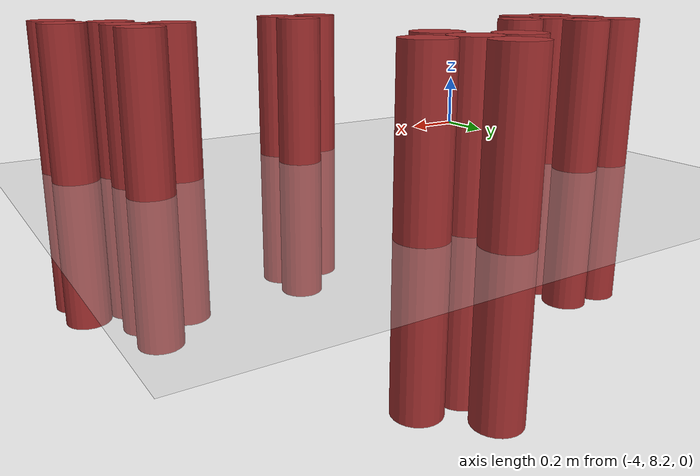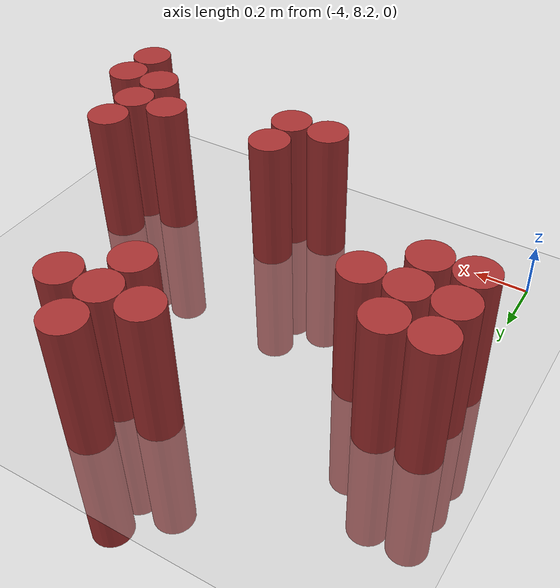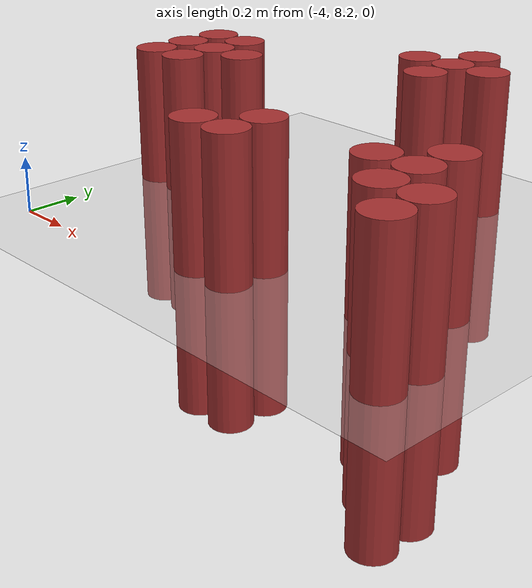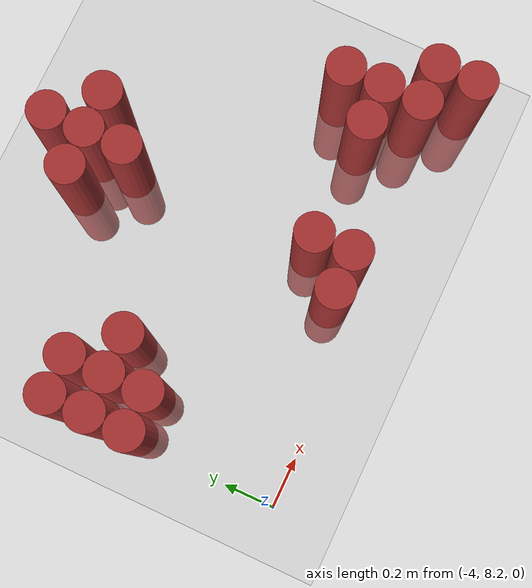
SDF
<sdf version="1.6">
 <world name="default">
  <model name="ground_plane">
   <static>1</static>
   <link name="link">
    <collision name="collision">
     <geometry><plane><normal>0 0 1</normal><size>100 100</size></plane></geometry>
     <surface><friction><ode><mu>100</mu><mu2>50</mu2></ode></friction></surface>
    </collision>
    <visual name="visual">
     <cast_shadows>0</cast_shadows>
     <geometry><plane><normal>0 0 1</normal><size>100 100</size></plane></geometry>
     <material>
      <script><uri>file://media/materials/scripts/gazebo.material</uri><name>Gazebo/Grey</name></script>
     </material>
    </visual>
   </link>
  </model>
  <model name="unit_cylinder_156">
   <static>1</static>
   <pose>-3.975000 8.775000 0.000000 0.000000 0.000000 0.000000</pose>
   <link name="link">
    <inertial>
     <mass>1</mass>
     <inertia><ixx>0.145833</ixx><ixy>0</ixy><ixz>0</ixz><iyy>0.145833</iyy><iyz>0</iyz><izz>0.125</izz></inertia>
    </inertial>
    <collision name="collision">
     <geometry><cylinder><radius>0.075000</radius><length>1</length></cylinder></geometry>
    </collision>
    <visual name="visual">
     <geometry><cylinder><radius>0.075000</radius><length>1</length></cylinder></geometry>
     <material>
      <ambient>0.648000 0.192000 0.192000 1</ambient>
      <diffuse>0.648000 0.192000 0.192000 1</diffuse>
     </material>
     <material>
      <script><name>Gazebo/Grey</name><uri>file://media/materials/scripts/gazebo.material</uri></script>
     </material>
    </visual>
    <sensor name="sensor_contact" type="contact"><contact><collision>collision</collision></contact></sensor>
   </link>
   <plugin filename="gz-sim-touchplugin-system" name="gz::sim::systems::TouchPlugin">
    <target>robot</target>
    <namespace>robot</namespace>
    <time>0.001</time>
    <enabled>true</enabled>
   </plugin>
  </model>
  <model name="unit_cylinder_157">
   <static>1</static>
   <pose>-3.975000 8.925000 0.000000 0.000000 0.000000 0.000000</pose>
   <link name="link">
    <inertial>
     <mass>1</mass>
     <inertia><ixx>0.145833</ixx><ixy>0</ixy><ixz>0</ixz><iyy>0.145833</iyy><iyz>0</iyz><izz>0.125</izz></inertia>
    </inertial>
    <collision name="collision">
     <geometry><cylinder><radius>0.075000</radius><length>1</length></cylinder></geometry>
    </collision>
    <visual name="visual">
     <geometry><cylinder><radius>0.075000</radius><length>1</length></cylinder></geometry>
     <material>
      <ambient>0.648000 0.192000 0.192000 1</ambient>
      <diffuse>0.648000 0.192000 0.192000 1</diffuse>
     </material>
     <material>
      <script><name>Gazebo/Grey</name><uri>file://media/materials/scripts/gazebo.material</uri></script>
     </material>
    </visual>
    <sensor name="sensor_contact" type="contact"><contact><collision>collision</collision></contact></sensor>
   </link>
   <plugin filename="gz-sim-touchplugin-system" name="gz::sim::systems::TouchPlugin">
    <target>robot</target>
    <namespace>robot</namespace>
    <time>0.001</time>
    <enabled>true</enabled>
   </plugin>
  </model>
  <model name="unit_cylinder_158">
   <static>1</static>
   <pose>-3.975000 9.075000 0.000000 0.000000 0.000000 0.000000</pose>
   <link name="link">
    <inertial>
     <mass>1</mass>
     <inertia><ixx>0.145833</ixx><ixy>0</ixy><ixz>0</ixz><iyy>0.145833</iyy><iyz>0</iyz><izz>0.125</izz></inertia>
    </inertial>
    <collision name="collision">
     <geometry><cylinder><radius>0.075000</radius><length>1</length></cylinder></geometry>
    </collision>
    <visual name="visual">
     <geometry><cylinder><radius>0.075000</radius><length>1</length></cylinder></geometry>
     <material>
      <ambient>0.648000 0.192000 0.192000 1</ambient>
      <diffuse>0.648000 0.192000 0.192000 1</diffuse>
     </material>
     <material>
      <script><name>Gazebo/Grey</name><uri>file://media/materials/scripts/gazebo.material</uri></script>
     </material>
    </visual>
    <sensor name="sensor_contact" type="contact"><contact><collision>collision</collision></contact></sensor>
   </link>
   <plugin filename="gz-sim-touchplugin-system" name="gz::sim::systems::TouchPlugin">
    <target>robot</target>
    <namespace>robot</namespace>
    <time>0.001</time>
    <enabled>true</enabled>
   </plugin>
  </model>
  <model name="unit_cylinder_161">
   <static>1</static>
   <pose>-3.825000 8.775000 0.000000 0.000000 0.000000 0.000000</pose>
   <link name="link">
    <inertial>
     <mass>1</mass>
     <inertia><ixx>0.145833</ixx><ixy>0</ixy><ixz>0</ixz><iyy>0.145833</iyy><iyz>0</iyz><izz>0.125</izz></inertia>
    </inertial>
    <collision name="collision">
     <geometry><cylinder><radius>0.075000</radius><length>1</length></cylinder></geometry>
    </collision>
    <visual name="visual">
     <geometry><cylinder><radius>0.075000</radius><length>1</length></cylinder></geometry>
     <material>
      <ambient>0.648000 0.192000 0.192000 1</ambient>
      <diffuse>0.648000 0.192000 0.192000 1</diffuse>
     </material>
     <material>
      <script><name>Gazebo/Grey</name><uri>file://media/materials/scripts/gazebo.material</uri></script>
     </material>
    </visual>
    <sensor name="sensor_contact" type="contact"><contact><collision>collision</collision></contact></sensor>
   </link>
   <plugin filename="gz-sim-touchplugin-system" name="gz::sim::systems::TouchPlugin">
    <target>robot</target>
    <namespace>robot</namespace>
    <time>0.001</time>
    <enabled>true</enabled>
   </plugin>
  </model>
  <model name="unit_cylinder_162">
   <static>1</static>
   <pose>-3.825000 8.925000 0.000000 0.000000 0.000000 0.000000</pose>
   <link name="link">
    <inertial>
     <mass>1</mass>
     <inertia><ixx>0.145833</ixx><ixy>0</ixy><ixz>0</ixz><iyy>0.145833</iyy><iyz>0</iyz><izz>0.125</izz></inertia>
    </inertial>
    <collision name="collision">
     <geometry><cylinder><radius>0.075000</radius><length>1</length></cylinder></geometry>
    </collision>
    <visual name="visual">
     <geometry><cylinder><radius>0.075000</radius><length>1</length></cylinder></geometry>
     <material>
      <ambient>0.648000 0.192000 0.192000 1</ambient>
      <diffuse>0.648000 0.192000 0.192000 1</diffuse>
     </material>
     <material>
      <script><name>Gazebo/Grey</name><uri>file://media/materials/scripts/gazebo.material</uri></script>
     </material>
    </visual>
    <sensor name="sensor_contact" type="contact"><contact><collision>collision</collision></contact></sensor>
   </link>
   <plugin filename="gz-sim-touchplugin-system" name="gz::sim::systems::TouchPlugin">
    <target>robot</target>
    <namespace>robot</namespace>
    <time>0.001</time>
    <enabled>true</enabled>
   </plugin>
  </model>
  <model name="unit_cylinder_163">
   <static>1</static>
   <pose>-3.825000 9.075000 0.000000 0.000000 0.000000 0.000000</pose>
   <link name="link">
    <inertial>
     <mass>1</mass>
     <inertia><ixx>0.145833</ixx><ixy>0</ixy><ixz>0</ixz><iyy>0.145833</iyy><iyz>0</iyz><izz>0.125</izz></inertia>
    </inertial>
    <collision name="collision">
     <geometry><cylinder><radius>0.075000</radius><length>1</length></cylinder></geometry>
    </collision>
    <visual name="visual">
     <geometry><cylinder><radius>0.075000</radius><length>1</length></cylinder></geometry>
     <material>
      <ambient>0.648000 0.192000 0.192000 1</ambient>
      <diffuse>0.648000 0.192000 0.192000 1</diffuse>
     </material>
     <material>
      <script><name>Gazebo/Grey</name><uri>file://media/materials/scripts/gazebo.material</uri></script>
     </material>
    </visual>
    <sensor name="sensor_contact" type="contact"><contact><collision>collision</collision></contact></sensor>
   </link>
   <plugin filename="gz-sim-touchplugin-system" name="gz::sim::systems::TouchPlugin">
    <target>robot</target>
    <namespace>robot</namespace>
    <time>0.001</time>
    <enabled>true</enabled>
   </plugin>
  </model>
  <model name="unit_cylinder_166">
   <static>1</static>
   <pose>-3.675000 8.925000 0.000000 0.000000 0.000000 0.000000</pose>
   <link name="link">
    <inertial>
     <mass>1</mass>
     <inertia><ixx>0.145833</ixx><ixy>0</ixy><ixz>0</ixz><iyy>0.145833</iyy><iyz>0</iyz><izz>0.125</izz></inertia>
    </inertial>
    <collision name="collision">
     <geometry><cylinder><radius>0.075000</radius><length>1</length></cylinder></geometry>
    </collision>
    <visual name="visual">
     <geometry><cylinder><radius>0.075000</radius><length>1</length></cylinder></geometry>
     <material>
      <ambient>0.648000 0.192000 0.192000 1</ambient>
      <diffuse>0.648000 0.192000 0.192000 1</diffuse>
     </material>
     <material>
      <script><name>Gazebo/Grey</name><uri>file://media/materials/scripts/gazebo.material</uri></script>
     </material>
    </visual>
    <sensor name="sensor_contact" type="contact"><contact><collision>collision</collision></contact></sensor>
   </link>
   <plugin filename="gz-sim-touchplugin-system" name="gz::sim::systems::TouchPlugin">
    <target>robot</target>
    <namespace>robot</namespace>
    <time>0.001</time>
    <enabled>true</enabled>
   </plugin>
  </model>
  <model name="unit_cylinder_181">
   <static>1</static>
   <pose>-3.225000 8.325000 0.000000 0.000000 0.000000 0.000000</pose>
   <link name="link">
    <inertial>
     <mass>1</mass>
     <inertia><ixx>0.145833</ixx><ixy>0</ixy><ixz>0</ixz><iyy>0.145833</iyy><iyz>0</iyz><izz>0.125</izz></inertia>
    </inertial>
    <collision name="collision">
     <geometry><cylinder><radius>0.075000</radius><length>1</length></cylinder></geometry>
    </collision>
    <visual name="visual">
     <geometry><cylinder><radius>0.075000</radius><length>1</length></cylinder></geometry>
     <material>
      <ambient>0.648000 0.192000 0.192000 1</ambient>
      <diffuse>0.648000 0.192000 0.192000 1</diffuse>
     </material>
     <material>
      <script><name>Gazebo/Grey</name><uri>file://media/materials/scripts/gazebo.material</uri></script>
     </material>
    </visual>
    <sensor name="sensor_contact" type="contact"><contact><collision>collision</collision></contact></sensor>
   </link>
   <plugin filename="gz-sim-touchplugin-system" name="gz::sim::systems::TouchPlugin">
    <target>robot</target>
    <namespace>robot</namespace>
    <time>0.001</time>
    <enabled>true</enabled>
   </plugin>
  </model>
  <model name="unit_cylinder_182">
   <static>1</static>
   <pose>-3.225000 9.375000 0.000000 0.000000 0.000000 0.000000</pose>
   <link name="link">
    <inertial>
     <mass>1</mass>
     <inertia><ixx>0.145833</ixx><ixy>0</ixy><ixz>0</ixz><iyy>0.145833</iyy><iyz>0</iyz><izz>0.125</izz></inertia>
    </inertial>
    <collision name="collision">
     <geometry><cylinder><radius>0.075000</radius><length>1</length></cylinder></geometry>
    </collision>
    <visual name="visual">
     <geometry><cylinder><radius>0.075000</radius><length>1</length></cylinder></geometry>
     <material>
      <ambient>0.648000 0.192000 0.192000 1</ambient>
      <diffuse>0.648000 0.192000 0.192000 1</diffuse>
     </material>
     <material>
      <script><name>Gazebo/Grey</name><uri>file://media/materials/scripts/gazebo.material</uri></script>
     </material>
    </visual>
    <sensor name="sensor_contact" type="contact"><contact><collision>collision</collision></contact></sensor>
   </link>
   <plugin filename="gz-sim-touchplugin-system" name="gz::sim::systems::TouchPlugin">
    <target>robot</target>
    <namespace>robot</namespace>
    <time>0.001</time>
    <enabled>true</enabled>
   </plugin>
  </model>
  <model name="unit_cylinder_185">
   <static>1</static>
   <pose>-3.075000 8.325000 0.000000 0.000000 0.000000 0.000000</pose>
   <link name="link">
    <inertial>
     <mass>1</mass>
     <inertia><ixx>0.145833</ixx><ixy>0</ixy><ixz>0</ixz><iyy>0.145833</iyy><iyz>0</iyz><izz>0.125</izz></inertia>
    </inertial>
    <collision name="collision">
     <geometry><cylinder><radius>0.075000</radius><length>1</length></cylinder></geometry>
    </collision>
    <visual name="visual">
     <geometry><cylinder><radius>0.075000</radius><length>1</length></cylinder></geometry>
     <material>
      <ambient>0.648000 0.192000 0.192000 1</ambient>
      <diffuse>0.648000 0.192000 0.192000 1</diffuse>
     </material>
     <material>
      <script><name>Gazebo/Grey</name><uri>file://media/materials/scripts/gazebo.material</uri></script>
     </material>
    </visual>
    <sensor name="sensor_contact" type="contact"><contact><collision>collision</collision></contact></sensor>
   </link>
   <plugin filename="gz-sim-touchplugin-system" name="gz::sim::systems::TouchPlugin">
    <target>robot</target>
    <namespace>robot</namespace>
    <time>0.001</time>
    <enabled>true</enabled>
   </plugin>
  </model>
  <model name="unit_cylinder_186">
   <static>1</static>
   <pose>-3.075000 8.475000 0.000000 0.000000 0.000000 0.000000</pose>
   <link name="link">
    <inertial>
     <mass>1</mass>
     <inertia><ixx>0.145833</ixx><ixy>0</ixy><ixz>0</ixz><iyy>0.145833</iyy><iyz>0</iyz><izz>0.125</izz></inertia>
    </inertial>
    <collision name="collision">
     <geometry><cylinder><radius>0.075000</radius><length>1</length></cylinder></geometry>
    </collision>
    <visual name="visual">
     <geometry><cylinder><radius>0.075000</radius><length>1</length></cylinder></geometry>
     <material>
      <ambient>0.648000 0.192000 0.192000 1</ambient>
      <diffuse>0.648000 0.192000 0.192000 1</diffuse>
     </material>
     <material>
      <script><name>Gazebo/Grey</name><uri>file://media/materials/scripts/gazebo.material</uri></script>
     </material>
    </visual>
    <sensor name="sensor_contact" type="contact"><contact><collision>collision</collision></contact></sensor>
   </link>
   <plugin filename="gz-sim-touchplugin-system" name="gz::sim::systems::TouchPlugin">
    <target>robot</target>
    <namespace>robot</namespace>
    <time>0.001</time>
    <enabled>true</enabled>
   </plugin>
  </model>
  <model name="unit_cylinder_187">
   <static>1</static>
   <pose>-3.075000 9.225000 0.000000 0.000000 0.000000 0.000000</pose>
   <link name="link">
    <inertial>
     <mass>1</mass>
     <inertia><ixx>0.145833</ixx><ixy>0</ixy><ixz>0</ixz><iyy>0.145833</iyy><iyz>0</iyz><izz>0.125</izz></inertia>
    </inertial>
    <collision name="collision">
     <geometry><cylinder><radius>0.075000</radius><length>1</length></cylinder></geometry>
    </collision>
    <visual name="visual">
     <geometry><cylinder><radius>0.075000</radius><length>1</length></cylinder></geometry>
     <material>
      <ambient>0.648000 0.192000 0.192000 1</ambient>
      <diffuse>0.648000 0.192000 0.192000 1</diffuse>
     </material>
     <material>
      <script><name>Gazebo/Grey</name><uri>file://media/materials/scripts/gazebo.material</uri></script>
     </material>
    </visual>
    <sensor name="sensor_contact" type="contact"><contact><collision>collision</collision></contact></sensor>
   </link>
   <plugin filename="gz-sim-touchplugin-system" name="gz::sim::systems::TouchPlugin">
    <target>robot</target>
    <namespace>robot</namespace>
    <time>0.001</time>
    <enabled>true</enabled>
   </plugin>
  </model>
  <model name="unit_cylinder_188">
   <static>1</static>
   <pose>-3.075000 9.375000 0.000000 0.000000 0.000000 0.000000</pose>
   <link name="link">
    <inertial>
     <mass>1</mass>
     <inertia><ixx>0.145833</ixx><ixy>0</ixy><ixz>0</ixz><iyy>0.145833</iyy><iyz>0</iyz><izz>0.125</izz></inertia>
    </inertial>
    <collision name="collision">
     <geometry><cylinder><radius>0.075000</radius><length>1</length></cylinder></geometry>
    </collision>
    <visual name="visual">
     <geometry><cylinder><radius>0.075000</radius><length>1</length></cylinder></geometry>
     <material>
      <ambient>0.648000 0.192000 0.192000 1</ambient>
      <diffuse>0.648000 0.192000 0.192000 1</diffuse>
     </material>
     <material>
      <script><name>Gazebo/Grey</name><uri>file://media/materials/scripts/gazebo.material</uri></script>
     </material>
    </visual>
    <sensor name="sensor_contact" type="contact"><contact><collision>collision</collision></contact></sensor>
   </link>
   <plugin filename="gz-sim-touchplugin-system" name="gz::sim::systems::TouchPlugin">
    <target>robot</target>
    <namespace>robot</namespace>
    <time>0.001</time>
    <enabled>true</enabled>
   </plugin>
  </model>
  <model name="unit_cylinder_189">
   <static>1</static>
   <pose>-3.075000 9.525000 0.000000 0.000000 0.000000 0.000000</pose>
   <link name="link">
    <inertial>
     <mass>1</mass>
     <inertia><ixx>0.145833</ixx><ixy>0</ixy><ixz>0</ixz><iyy>0.145833</iyy><iyz>0</iyz><izz>0.125</izz></inertia>
    </inertial>
    <collision name="collision">
     <geometry><cylinder><radius>0.075000</radius><length>1</length></cylinder></geometry>
    </collision>
    <visual name="visual">
     <geometry><cylinder><radius>0.075000</radius><length>1</length></cylinder></geometry>
     <material>
      <ambient>0.648000 0.192000 0.192000 1</ambient>
      <diffuse>0.648000 0.192000 0.192000 1</diffuse>
     </material>
     <material>
      <script><name>Gazebo/Grey</name><uri>file://media/materials/scripts/gazebo.material</uri></script>
     </material>
    </visual>
    <sensor name="sensor_contact" type="contact"><contact><collision>collision</collision></contact></sensor>
   </link>
   <plugin filename="gz-sim-touchplugin-system" name="gz::sim::systems::TouchPlugin">
    <target>robot</target>
    <namespace>robot</namespace>
    <time>0.001</time>
    <enabled>true</enabled>
   </plugin>
  </model>
  <model name="unit_cylinder_190">
   <static>1</static>
   <pose>-2.925000 9.375000 0.000000 0.000000 0.000000 0.000000</pose>
   <link name="link">
    <inertial>
     <mass>1</mass>
     <inertia><ixx>0.145833</ixx><ixy>0</ixy><ixz>0</ixz><iyy>0.145833</iyy><iyz>0</iyz><izz>0.125</izz></inertia>
    </inertial>
    <collision name="collision">
     <geometry><cylinder><radius>0.075000</radius><length>1</length></cylinder></geometry>
    </collision>
    <visual name="visual">
     <geometry><cylinder><radius>0.075000</radius><length>1</length></cylinder></geometry>
     <material>
      <ambient>0.648000 0.192000 0.192000 1</ambient>
      <diffuse>0.648000 0.192000 0.192000 1</diffuse>
     </material>
     <material>
      <script><name>Gazebo/Grey</name><uri>file://media/materials/scripts/gazebo.material</uri></script>
     </material>
    </visual>
    <sensor name="sensor_contact" type="contact"><contact><collision>collision</collision></contact></sensor>
   </link>
   <plugin filename="gz-sim-touchplugin-system" name="gz::sim::systems::TouchPlugin">
    <target>robot</target>
    <namespace>robot</namespace>
    <time>0.001</time>
    <enabled>true</enabled>
   </plugin>
  </model>
  <model name="unit_cylinder_195">
   <static>1</static>
   <pose>-2.625000 8.475000 0.000000 0.000000 0.000000 0.000000</pose>
   <link name="link">
    <inertial>
     <mass>1</mass>
     <inertia><ixx>0.145833</ixx><ixy>0</ixy><ixz>0</ixz><iyy>0.145833</iyy><iyz>0</iyz><izz>0.125</izz></inertia>
    </inertial>
    <collision name="collision">
     <geometry><cylinder><radius>0.075000</radius><length>1</length></cylinder></geometry>
    </collision>
    <visual name="visual">
     <geometry><cylinder><radius>0.075000</radius><length>1</length></cylinder></geometry>
     <material>
      <ambient>0.648000 0.192000 0.192000 1</ambient>
      <diffuse>0.648000 0.192000 0.192000 1</diffuse>
     </material>
     <material>
      <script><name>Gazebo/Grey</name><uri>file://media/materials/scripts/gazebo.material</uri></script>
     </material>
    </visual>
    <sensor name="sensor_contact" type="contact"><contact><collision>collision</collision></contact></sensor>
   </link>
   <plugin filename="gz-sim-touchplugin-system" name="gz::sim::systems::TouchPlugin">
    <target>robot</target>
    <namespace>robot</namespace>
    <time>0.001</time>
    <enabled>true</enabled>
   </plugin>
  </model>
  <model name="unit_cylinder_198">
   <static>1</static>
   <pose>-2.475000 8.325000 0.000000 0.000000 0.000000 0.000000</pose>
   <link name="link">
    <inertial>
     <mass>1</mass>
     <inertia><ixx>0.145833</ixx><ixy>0</ixy><ixz>0</ixz><iyy>0.145833</iyy><iyz>0</iyz><izz>0.125</izz></inertia>
    </inertial>
    <collision name="collision">
     <geometry><cylinder><radius>0.075000</radius><length>1</length></cylinder></geometry>
    </collision>
    <visual name="visual">
     <geometry><cylinder><radius>0.075000</radius><length>1</length></cylinder></geometry>
     <material>
      <ambient>0.648000 0.192000 0.192000 1</ambient>
      <diffuse>0.648000 0.192000 0.192000 1</diffuse>
     </material>
     <material>
      <script><name>Gazebo/Grey</name><uri>file://media/materials/scripts/gazebo.material</uri></script>
     </material>
    </visual>
    <sensor name="sensor_contact" type="contact"><contact><collision>collision</collision></contact></sensor>
   </link>
   <plugin filename="gz-sim-touchplugin-system" name="gz::sim::systems::TouchPlugin">
    <target>robot</target>
    <namespace>robot</namespace>
    <time>0.001</time>
    <enabled>true</enabled>
   </plugin>
  </model>
  <model name="unit_cylinder_199">
   <static>1</static>
   <pose>-2.475000 8.475000 0.000000 0.000000 0.000000 0.000000</pose>
   <link name="link">
    <inertial>
     <mass>1</mass>
     <inertia><ixx>0.145833</ixx><ixy>0</ixy><ixz>0</ixz><iyy>0.145833</iyy><iyz>0</iyz><izz>0.125</izz></inertia>
    </inertial>
    <collision name="collision">
     <geometry><cylinder><radius>0.075000</radius><length>1</length></cylinder></geometry>
    </collision>
    <visual name="visual">
     <geometry><cylinder><radius>0.075000</radius><length>1</length></cylinder></geometry>
     <material>
      <ambient>0.648000 0.192000 0.192000 1</ambient>
      <diffuse>0.648000 0.192000 0.192000 1</diffuse>
     </material>
     <material>
      <script><name>Gazebo/Grey</name><uri>file://media/materials/scripts/gazebo.material</uri></script>
     </material>
    </visual>
    <sensor name="sensor_contact" type="contact"><contact><collision>collision</collision></contact></sensor>
   </link>
   <plugin filename="gz-sim-touchplugin-system" name="gz::sim::systems::TouchPlugin">
    <target>robot</target>
    <namespace>robot</namespace>
    <time>0.001</time>
    <enabled>true</enabled>
   </plugin>
  </model>
  <model name="unit_cylinder_200">
   <static>1</static>
   <pose>-2.475000 8.625000 0.000000 0.000000 0.000000 0.000000</pose>
   <link name="link">
    <inertial>
     <mass>1</mass>
     <inertia><ixx>0.145833</ixx><ixy>0</ixy><ixz>0</ixz><iyy>0.145833</iyy><iyz>0</iyz><izz>0.125</izz></inertia>
    </inertial>
    <collision name="collision">
     <geometry><cylinder><radius>0.075000</radius><length>1</length></cylinder></geometry>
    </collision>
    <visual name="visual">
     <geometry><cylinder><radius>0.075000</radius><length>1</length></cylinder></geometry>
     <material>
      <ambient>0.648000 0.192000 0.192000 1</ambient>
      <diffuse>0.648000 0.192000 0.192000 1</diffuse>
     </material>
     <material>
      <script><name>Gazebo/Grey</name><uri>file://media/materials/scripts/gazebo.material</uri></script>
     </material>
    </visual>
    <sensor name="sensor_contact" type="contact"><contact><collision>collision</collision></contact></sensor>
   </link>
   <plugin filename="gz-sim-touchplugin-system" name="gz::sim::systems::TouchPlugin">
    <target>robot</target>
    <namespace>robot</namespace>
    <time>0.001</time>
    <enabled>true</enabled>
   </plugin>
  </model>
  <model name="unit_cylinder_202">
   <static>1</static>
   <pose>-2.325000 8.175000 0.000000 0.000000 0.000000 0.000000</pose>
   <link name="link">
    <inertial>
     <mass>1</mass>
     <inertia><ixx>0.145833</ixx><ixy>0</ixy><ixz>0</ixz><iyy>0.145833</iyy><iyz>0</iyz><izz>0.125</izz></inertia>
    </inertial>
    <collision name="collision">
     <geometry><cylinder><radius>0.075000</radius><length>1</length></cylinder></geometry>
    </collision>
    <visual name="visual">
     <geometry><cylinder><radius>0.075000</radius><length>1</length></cylinder></geometry>
     <material>
      <ambient>0.648000 0.192000 0.192000 1</ambient>
      <diffuse>0.648000 0.192000 0.192000 1</diffuse>
     </material>
     <material>
      <script><name>Gazebo/Grey</name><uri>file://media/materials/scripts/gazebo.material</uri></script>
     </material>
    </visual>
    <sensor name="sensor_contact" type="contact"><contact><collision>collision</collision></contact></sensor>
   </link>
   <plugin filename="gz-sim-touchplugin-system" name="gz::sim::systems::TouchPlugin">
    <target>robot</target>
    <namespace>robot</namespace>
    <time>0.001</time>
    <enabled>true</enabled>
   </plugin>
  </model>
  <model name="unit_cylinder_203">
   <static>1</static>
   <pose>-2.325000 8.325000 0.000000 0.000000 0.000000 0.000000</pose>
   <link name="link">
    <inertial>
     <mass>1</mass>
     <inertia><ixx>0.145833</ixx><ixy>0</ixy><ixz>0</ixz><iyy>0.145833</iyy><iyz>0</iyz><izz>0.125</izz></inertia>
    </inertial>
    <collision name="collision">
     <geometry><cylinder><radius>0.075000</radius><length>1</length></cylinder></geometry>
    </collision>
    <visual name="visual">
     <geometry><cylinder><radius>0.075000</radius><length>1</length></cylinder></geometry>
     <material>
      <ambient>0.648000 0.192000 0.192000 1</ambient>
      <diffuse>0.648000 0.192000 0.192000 1</diffuse>
     </material>
     <material>
      <script><name>Gazebo/Grey</name><uri>file://media/materials/scripts/gazebo.material</uri></script>
     </material>
    </visual>
    <sensor name="sensor_contact" type="contact"><contact><collision>collision</collision></contact></sensor>
   </link>
   <plugin filename="gz-sim-touchplugin-system" name="gz::sim::systems::TouchPlugin">
    <target>robot</target>
    <namespace>robot</namespace>
    <time>0.001</time>
    <enabled>true</enabled>
   </plugin>
  </model>
 </world>
</sdf>
